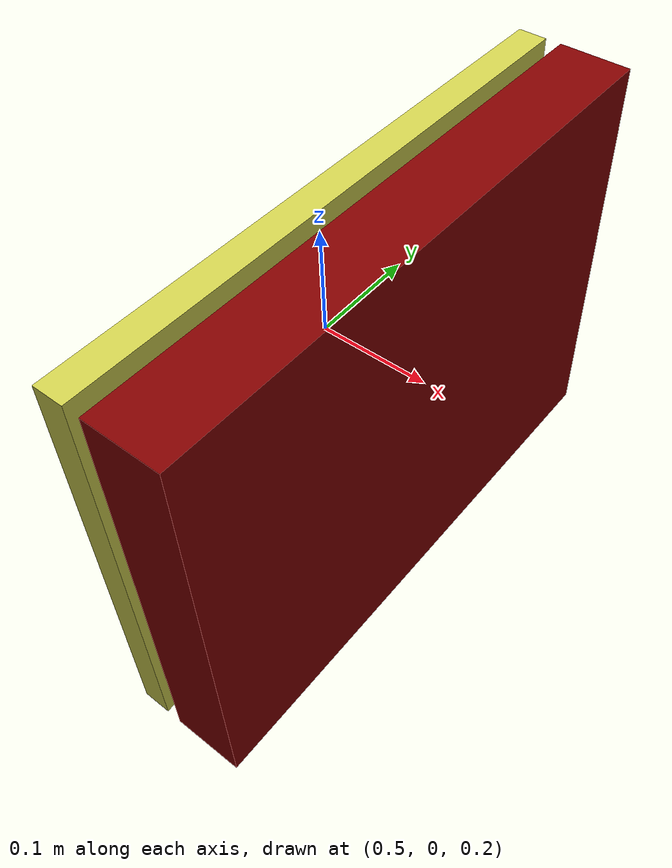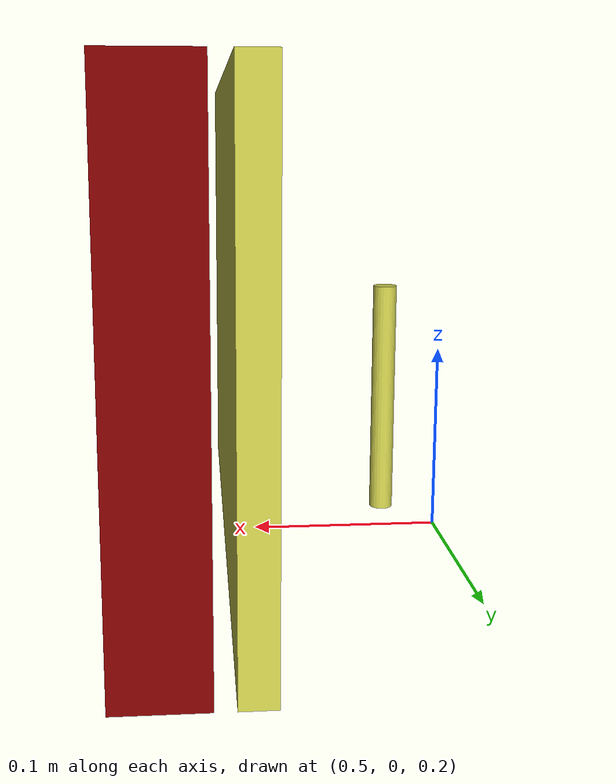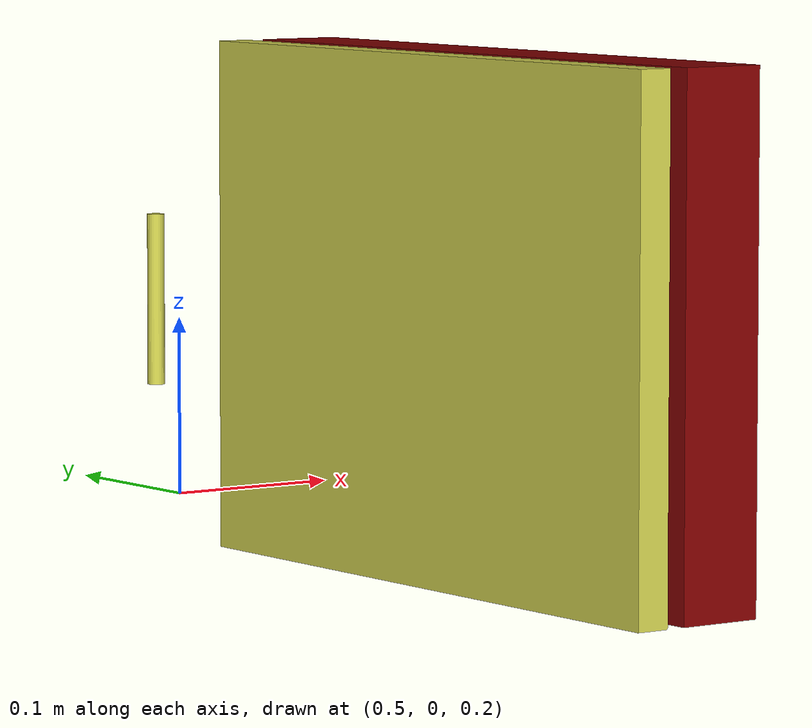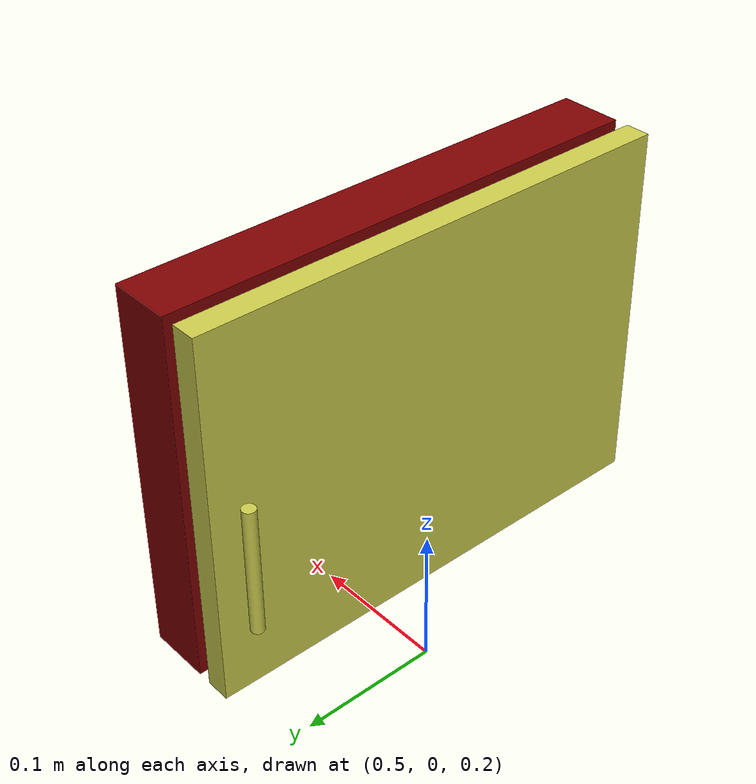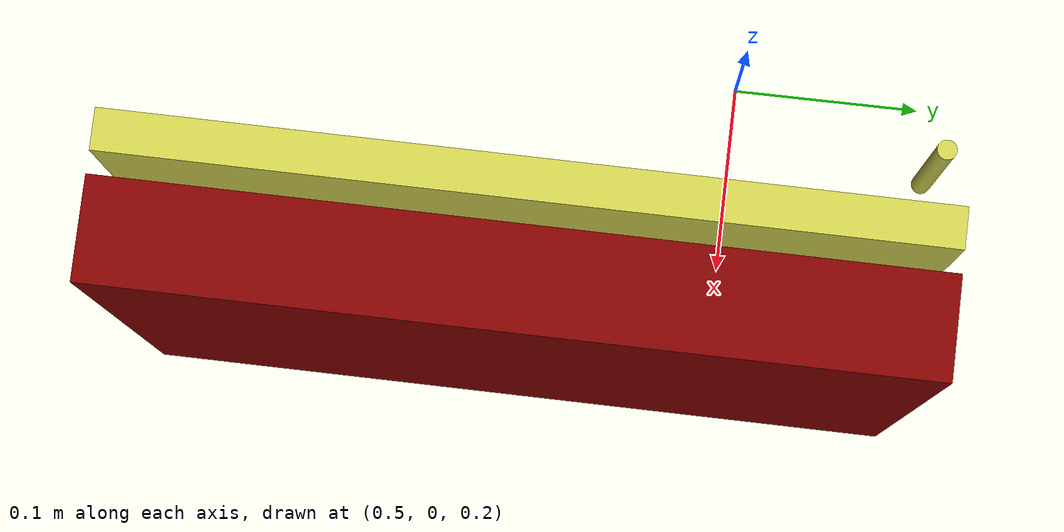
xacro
<?xml version="1.0" ?>
<robot name="door">
    <link name="world"/>
    <joint name="fixed" type="fixed">
        <parent link="world"/>
        <child link="door_frame"/>
        <origin xyz="0.65 -0.3 0.3" rpy="1.57 0 3.14"/>
    </joint>

    <link name="door_frame">
        <visual>
            <origin rpy="0 0 0" xyz="0 0 0.2"/>
            <geometry>
                <box size="0.05 0.3 0.4"/>
            </geometry>
            <material name="frame_material">
                <color rgba="0.5 0.0 0.0 1"/>
            </material>
        </visual>
        <collision>
            <origin rpy="0 0 0" xyz="0 0 0.2"/>
            <geometry>
                <box size="0.05 0.3 0.4"/>
            </geometry>
        </collision>
    </link>

    <link name="door_link">
        <inertial>
            <origin rpy="0 0 0" xyz="0 0 0.2"/>
            <mass value="1.0"/>
            <inertia ixx="0.048966669" ixy="0" ixz="0" iyy="0.046466667" iyz="0" izz="0.0041666669"/>
        </inertial>
        <visual>
            <origin rpy="0 0 0" xyz="0 0 0.2"/>
            <geometry>
                <box size="0.02 0.3 0.4"/>
            </geometry>
            <material name="door_material">
                <color rgba="0.8 0.8 0.3 1"/>
            </material>
        </visual>
        <collision>
            <origin rpy="0 0 0" xyz="0 0 0.2"/>
            <geometry>
                <box size="0.02 0.3 0.4"/>
            </geometry>
        </collision>
    </link>

    <joint name="articulation_joint" type="revolute">
        <parent link="door_frame"/>
        <child link="door_link"/>
        <dynamics damping="1.0" friction="4.0"/>
        <origin xyz="0.046 0 0"/>
        <axis xyz="0 1 0"/>
        <limit effort="100" lower="0" upper="1.57" velocity="10.0"/>
    </joint>

    <link name="handle_link">
        <inertial>
            <origin rpy="0 0 0" xyz="0 0 0"/>
            <mass value="0.1"/>
            <inertia ixx="0.001" ixy="0" ixz="0" iyy="0.001" iyz="0" izz="0.001"/>
        </inertial>
        <visual>
            <origin rpy="0 0 0" xyz="0 0 0"/>
            <geometry>
                <cylinder radius="0.005" length="0.10"/>
            </geometry>
            <material name="handle_matreial">
                <color rgba="0.8 0.8 0.3 1"/>
            </material>
        </visual>
        <collision>
            <origin rpy="0 0 0" xyz="0 0 0"/>
            <geometry>
                <cylinder radius="0.005" length="0.010"/>
            </geometry>
        </collision>
    </link>

    <joint name="handle_joint" type="fixed">
        <parent link="door_link"/>
        <child link="handle_link"/>
        <origin xyz="0.055 0 0.4" rpy="1.5708 0 0"/>
        <dynamics damping="1.0" friction="2.0"/>
        <axis xyz="0 1 0"/>
    </joint>
</robot>
